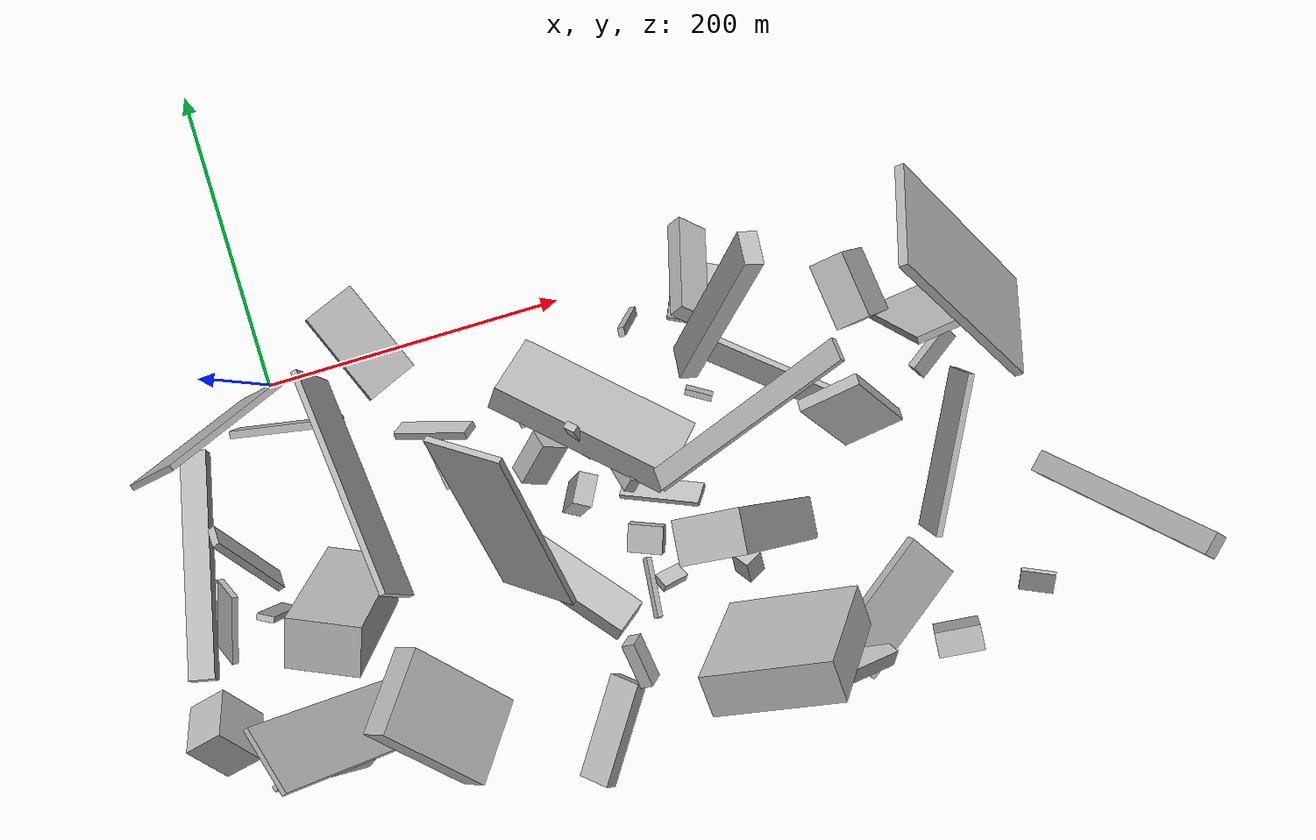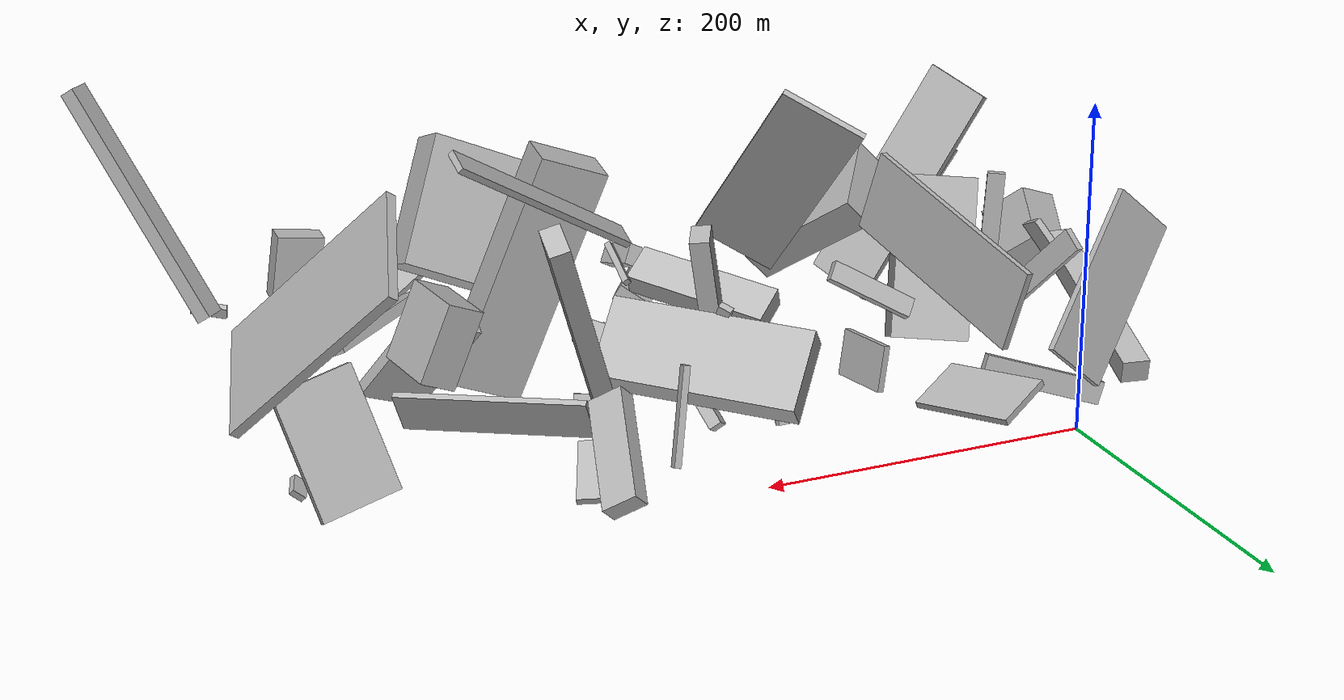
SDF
<sdf version="1.6">
 <world name="default">
  <model name="building_2">
   <static>0</static>
   <pose>451.5624902986939 -33.32970941571944 102.76273283419845 -0.8259827345149581 -0.7592758096414747 2.2470498553428886</pose>
   <link name="link">
    <gravity>0</gravity>
    <pose>0 0 35.5 0 0 0</pose>
    <collision name="collision"><geometry><box><size>145 6 71</size></box></geometry></collision>
    <visual name="visual">
     <cast_shadows>0</cast_shadows>
     <geometry><box><size>145 6 71</size></box></geometry>
     <material>
      <script>
       <uri>model://HANNAS_wall/materials/scripts</uri>
       <uri>model://HANNAS_wall/materials/textures</uri>
       <name>vrc/HANNAS_wall</name>
      </script>
     </material>
    </visual>
   </link>
  </model>
  <model name="building_3">
   <static>0</static>
   <pose>294.24459259865444 -49.984730838097406 99.87693806458475 -2.504968858752314 -1.0709866795299485 0.7755227535362518</pose>
   <link name="link">
    <gravity>0</gravity>
    <pose>0 0 11.0 0 0 0</pose>
    <collision name="collision"><geometry><box><size>150 12 22</size></box></geometry></collision>
    <visual name="visual">
     <cast_shadows>0</cast_shadows>
     <geometry><box><size>150 12 22</size></box></geometry>
     <material>
      <script>
       <uri>model://HANNAS_wall/materials/scripts</uri>
       <uri>model://HANNAS_wall/materials/textures</uri>
       <name>vrc/HANNAS_wall</name>
      </script>
     </material>
    </visual>
   </link>
  </model>
  <model name="building_4">
   <static>0</static>
   <pose>151.2767325008403 -107.09154220934064 32.48193512324727 0.9275128388393038 0.6493418718061549 1.8882977679449942</pose>
   <link name="link">
    <gravity>0</gravity>
    <pose>0 0 16.0 0 0 0</pose>
    <collision name="collision"><geometry><box><size>15 20 32</size></box></geometry></collision>
    <visual name="visual">
     <cast_shadows>0</cast_shadows>
     <geometry><box><size>15 20 32</size></box></geometry>
     <material>
      <script>
       <uri>model://HANNAS_wall/materials/scripts</uri>
       <uri>model://HANNAS_wall/materials/textures</uri>
       <name>vrc/HANNAS_wall</name>
      </script>
     </material>
    </visual>
   </link>
  </model>
  <model name="building_5">
   <static>0</static>
   <pose>296.1737670128903 -179.05190907568524 86.21473645385353 -2.9481805508152674 -1.1986294896747989 2.860380191356934</pose>
   <link name="link">
    <gravity>0</gravity>
    <pose>0 0 21.5 0 0 0</pose>
    <collision name="collision"><geometry><box><size>150 28 43</size></box></geometry></collision>
    <visual name="visual">
     <cast_shadows>0</cast_shadows>
     <geometry><box><size>150 28 43</size></box></geometry>
     <material>
      <script>
       <uri>model://HANNAS_wall/materials/scripts</uri>
       <uri>model://HANNAS_wall/materials/textures</uri>
       <name>vrc/HANNAS_wall</name>
      </script>
     </material>
    </visual>
   </link>
  </model>
  <model name="building_6">
   <static>0</static>
   <pose>71.12265748223888 -214.65724861649122 54.089847000162536 0.9755112662001612 -0.8217843174659927 -0.15030441125377775</pose>
   <link name="link">
    <gravity>0</gravity>
    <pose>0 0 29.0 0 0 0</pose>
    <collision name="collision"><geometry><box><size>22 85 58</size></box></geometry></collision>
    <visual name="visual">
     <cast_shadows>0</cast_shadows>
     <geometry><box><size>22 85 58</size></box></geometry>
     <material>
      <script>
       <uri>model://HANNAS_wall/materials/scripts</uri>
       <uri>model://HANNAS_wall/materials/textures</uri>
       <name>vrc/HANNAS_wall</name>
      </script>
     </material>
    </visual>
   </link>
  </model>
  <model name="building_7">
   <static>0</static>
   <pose>464.2543742640903 -189.53138008457 76.31035935655872 0.054750105578146066 0.5840906714023034 -0.7440478275020213</pose>
   <link name="link">
    <gravity>0</gravity>
    <pose>0 0 75.0 0 0 0</pose>
    <collision name="collision"><geometry><box><size>9 14 150</size></box></geometry></collision>
    <visual name="visual">
     <cast_shadows>0</cast_shadows>
     <geometry><box><size>9 14 150</size></box></geometry>
     <material>
      <script>
       <uri>model://HANNAS_wall/materials/scripts</uri>
       <uri>model://HANNAS_wall/materials/textures</uri>
       <name>vrc/HANNAS_wall</name>
      </script>
     </material>
    </visual>
   </link>
  </model>
  <model name="building_9">
   <static>0</static>
   <pose>402.8307953808595 -80.43801238531685 42.143537407230895 -2.058238575848827 -1.1165951587942737 -1.0037950295369915</pose>
   <link name="link">
    <gravity>0</gravity>
    <pose>0 0 24.5 0 0 0</pose>
    <collision name="collision"><geometry><box><size>76 5 49</size></box></geometry></collision>
    <visual name="visual">
     <cast_shadows>0</cast_shadows>
     <geometry><box><size>76 5 49</size></box></geometry>
     <material>
      <script>
       <uri>model://HANNAS_wall/materials/scripts</uri>
       <uri>model://HANNAS_wall/materials/textures</uri>
       <name>vrc/HANNAS_wall</name>
      </script>
     </material>
    </visual>
   </link>
  </model>
  <model name="building_12">
   <static>0</static>
   <pose>406.99695888584796 -162.16269770112368 60.97939326974913 -0.11763524278981584 -0.15774184154037282 2.6952777827222993</pose>
   <link name="link">
    <gravity>0</gravity>
    <pose>0 0 19.0 0 0 0</pose>
    <collision name="collision"><geometry><box><size>4 103 38</size></box></geometry></collision>
    <visual name="visual">
     <cast_shadows>0</cast_shadows>
     <geometry><box><size>4 103 38</size></box></geometry>
     <material>
      <script>
       <uri>model://HANNAS_wall/materials/scripts</uri>
       <uri>model://HANNAS_wall/materials/textures</uri>
       <name>vrc/HANNAS_wall</name>
      </script>
     </material>
    </visual>
   </link>
  </model>
  <model name="building_13">
   <static>0</static>
   <pose>4.032316573456139 -31.386098392290506 27.423597168816624 2.808362640784029 -0.1357000118732573 1.4422339011119525</pose>
   <link name="link">
    <gravity>0</gravity>
    <pose>0 0 7.0 0 0 0</pose>
    <collision name="collision"><geometry><box><size>5 78 14</size></box></geometry></collision>
    <visual name="visual">
     <cast_shadows>0</cast_shadows>
     <geometry><box><size>5 78 14</size></box></geometry>
     <material>
      <script>
       <uri>model://HANNAS_wall/materials/scripts</uri>
       <uri>model://HANNAS_wall/materials/textures</uri>
       <name>vrc/HANNAS_wall</name>
      </script>
     </material>
    </visual>
   </link>
  </model>
  <model name="building_15">
   <static>0</static>
   <pose>83.05421869000531 -55.668051343389344 68.76536428135091 -0.9567382481227157 0.5513022646672949 -1.4916707012942982</pose>
   <link name="link">
    <gravity>0</gravity>
    <pose>0 0 27.0 0 0 0</pose>
    <collision name="collision"><geometry><box><size>5 12 54</size></box></geometry></collision>
    <visual name="visual">
     <cast_shadows>0</cast_shadows>
     <geometry><box><size>5 12 54</size></box></geometry>
     <material>
      <script>
       <uri>model://HANNAS_wall/materials/scripts</uri>
       <uri>model://HANNAS_wall/materials/textures</uri>
       <name>vrc/HANNAS_wall</name>
      </script>
     </material>
    </visual>
   </link>
  </model>
  <model name="building_17">
   <static>0</static>
   <pose>303.46732956016973 -29.11324415672587 16.94607264653463 -1.4899946266989361 0.39201506307398987 1.1509717508772095</pose>
   <link name="link">
    <gravity>0</gravity>
    <pose>0 0 16.0 0 0 0</pose>
    <collision name="collision"><geometry><box><size>44 4 32</size></box></geometry></collision>
    <visual name="visual">
     <cast_shadows>0</cast_shadows>
     <geometry><box><size>44 4 32</size></box></geometry>
     <material>
      <script>
       <uri>model://HANNAS_wall/materials/scripts</uri>
       <uri>model://HANNAS_wall/materials/textures</uri>
       <name>vrc/HANNAS_wall</name>
      </script>
     </material>
    </visual>
   </link>
  </model>
  <model name="building_20">
   <static>0</static>
   <pose>-51.62002118880841 -147.30420112321517 71.76723108918968 -2.6759814854458868 0.5400792590107414 -0.12164570405082717</pose>
   <link name="link">
    <gravity>0</gravity>
    <pose>0 0 13.0 0 0 0</pose>
    <collision name="collision"><geometry><box><size>4 48 26</size></box></geometry></collision>
    <visual name="visual">
     <cast_shadows>0</cast_shadows>
     <geometry><box><size>4 48 26</size></box></geometry>
     <material>
      <script>
       <uri>model://HANNAS_wall/materials/scripts</uri>
       <uri>model://HANNAS_wall/materials/textures</uri>
       <name>vrc/HANNAS_wall</name>
      </script>
     </material>
    </visual>
   </link>
  </model>
  <model name="building_22">
   <static>0</static>
   <pose>-33.438903712791856 -221.27981078544016 69.20277285872248 2.493848589270199 -0.34049098860665267 1.1289027266845415</pose>
   <link name="link">
    <gravity>0</gravity>
    <pose>0 0 11.5 0 0 0</pose>
    <collision name="collision"><geometry><box><size>7 27 23</size></box></geometry></collision>
    <visual name="visual">
     <cast_shadows>0</cast_shadows>
     <geometry><box><size>7 27 23</size></box></geometry>
     <material>
      <script>
       <uri>model://HANNAS_wall/materials/scripts</uri>
       <uri>model://HANNAS_wall/materials/textures</uri>
       <name>vrc/HANNAS_wall</name>
      </script>
     </material>
    </visual>
   </link>
  </model>
  <model name="building_23">
   <static>0</static>
   <pose>215.22700282867342 -67.97996047458827 29.768134644519385 -0.06448674257944507 -0.8016641945003186 0.8675040339189963</pose>
   <link name="link">
    <gravity>0</gravity>
    <pose>0 0 25.5 0 0 0</pose>
    <collision name="collision"><geometry><box><size>19 123 51</size></box></geometry></collision>
    <visual name="visual">
     <cast_shadows>0</cast_shadows>
     <geometry><box><size>19 123 51</size></box></geometry>
     <material>
      <script>
       <uri>model://HANNAS_wall/materials/scripts</uri>
       <uri>model://HANNAS_wall/materials/textures</uri>
       <name>vrc/HANNAS_wall</name>
      </script>
     </material>
    </visual>
   </link>
  </model>
  <model name="building_24">
   <static>0</static>
   <pose>-23.988614353842344 -247.6736132114047 50.9372792480067 1.1623830595055502 -0.36851839528940045 0.6105968302007813</pose>
   <link name="link">
    <gravity>0</gravity>
    <pose>0 0 2.0 0 0 0</pose>
    <collision name="collision"><geometry><box><size>18 91 4</size></box></geometry></collision>
    <visual name="visual">
     <cast_shadows>0</cast_shadows>
     <geometry><box><size>18 91 4</size></box></geometry>
     <material>
      <script>
       <uri>model://HANNAS_wall/materials/scripts</uri>
       <uri>model://HANNAS_wall/materials/textures</uri>
       <name>vrc/HANNAS_wall</name>
      </script>
     </material>
    </visual>
   </link>
  </model>
  <model name="building_30">
   <static>0</static>
   <pose>-31.36417800949688 -239.15920118520944 8.774959442405294 2.479385753158873 0.7455972902719538 -2.5316493583746156</pose>
   <link name="link">
    <gravity>0</gravity>
    <pose>0 0 2.0 0 0 0</pose>
    <collision name="collision"><geometry><box><size>6 22 4</size></box></geometry></collision>
    <visual name="visual">
     <cast_shadows>0</cast_shadows>
     <geometry><box><size>6 22 4</size></box></geometry>
     <material>
      <script>
       <uri>model://HANNAS_wall/materials/scripts</uri>
       <uri>model://HANNAS_wall/materials/textures</uri>
       <name>vrc/HANNAS_wall</name>
      </script>
     </material>
    </visual>
   </link>
  </model>
  <model name="building_31">
   <static>0</static>
   <pose>388.17584803030763 -282.0164363616808 42.30422748387398 0.0023739043710750913 -0.13676317492188012 -0.08147370555343918</pose>
   <link name="link">
    <gravity>0</gravity>
    <pose>0 0 20.5 0 0 0</pose>
    <collision name="collision"><geometry><box><size>29 16 41</size></box></geometry></collision>
    <visual name="visual">
     <cast_shadows>0</cast_shadows>
     <geometry><box><size>29 16 41</size></box></geometry>
     <material>
      <script>
       <uri>model://HANNAS_wall/materials/scripts</uri>
       <uri>model://HANNAS_wall/materials/textures</uri>
       <name>vrc/HANNAS_wall</name>
      </script>
     </material>
    </visual>
   </link>
  </model>
  <model name="building_33">
   <static>0</static>
   <pose>156.5583010689324 -182.6293961566376 40.918287389989466 0.15990444128582296 -0.5184925155050153 -2.519461892789466</pose>
   <link name="link">
    <gravity>0</gravity>
    <pose>0 0 7.5 0 0 0</pose>
    <collision name="collision"><geometry><box><size>25 91 15</size></box></geometry></collision>
    <visual name="visual">
     <cast_shadows>0</cast_shadows>
     <geometry><box><size>25 91 15</size></box></geometry>
     <material>
      <script>
       <uri>model://HANNAS_wall/materials/scripts</uri>
       <uri>model://HANNAS_wall/materials/textures</uri>
       <name>vrc/HANNAS_wall</name>
      </script>
     </material>
    </visual>
   </link>
  </model>
  <model name="building_34">
   <static>0</static>
   <pose>444.1072434119529 -83.28287669640736 8.211256930859381 0.43426534998078237 -0.7922267940661423 2.4507759026894695</pose>
   <link name="link">
    <gravity>0</gravity>
    <pose>0 0 4.5 0 0 0</pose>
    <collision name="collision"><geometry><box><size>4 13 9</size></box></geometry></collision>
    <visual name="visual">
     <cast_shadows>0</cast_shadows>
     <geometry><box><size>4 13 9</size></box></geometry>
     <material>
      <script>
       <uri>model://HANNAS_wall/materials/scripts</uri>
       <uri>model://HANNAS_wall/materials/textures</uri>
       <name>vrc/HANNAS_wall</name>
      </script>
     </material>
    </visual>
   </link>
  </model>
  <model name="building_37">
   <static>0</static>
   <pose>231.70824100440421 -130.868606887137 110.27158323949004 -0.9553997217885196 -0.44876100926736806 -1.5043587718758642</pose>
   <link name="link">
    <gravity>0</gravity>
    <pose>0 0 74.0 0 0 0</pose>
    <collision name="collision"><geometry><box><size>15 4 148</size></box></geometry></collision>
    <visual name="visual">
     <cast_shadows>0</cast_shadows>
     <geometry><box><size>15 4 148</size></box></geometry>
     <material>
      <script>
       <uri>model://HANNAS_wall/materials/scripts</uri>
       <uri>model://HANNAS_wall/materials/textures</uri>
       <name>vrc/HANNAS_wall</name>
      </script>
     </material>
    </visual>
   </link>
  </model>
  <model name="building_38">
   <static>0</static>
   <pose>211.22124045199027 -169.43228697006796 10.54079574492289 -2.9163793306872097 0.15634803066473366 -1.8960968574811505</pose>
   <link name="link">
    <gravity>0</gravity>
    <pose>0 0 4.5 0 0 0</pose>
    <collision name="collision"><geometry><box><size>19 24 9</size></box></geometry></collision>
    <visual name="visual">
     <cast_shadows>0</cast_shadows>
     <geometry><box><size>19 24 9</size></box></geometry>
     <material>
      <script>
       <uri>model://HANNAS_wall/materials/scripts</uri>
       <uri>model://HANNAS_wall/materials/textures</uri>
       <name>vrc/HANNAS_wall</name>
      </script>
     </material>
    </visual>
   </link>
  </model>
  <model name="building_39">
   <static>0</static>
   <pose>53.52100733027267 -84.36913834237176 68.20634369231799 0.1604917648877754 -0.1971734970545488 -1.4462767649290929</pose>
   <link name="link">
    <gravity>0</gravity>
    <pose>0 0 25.0 0 0 0</pose>
    <collision name="collision"><geometry><box><size>150 4 50</size></box></geometry></collision>
    <visual name="visual">
     <cast_shadows>0</cast_shadows>
     <geometry><box><size>150 4 50</size></box></geometry>
     <material>
      <script>
       <uri>model://HANNAS_wall/materials/scripts</uri>
       <uri>model://HANNAS_wall/materials/textures</uri>
       <name>vrc/HANNAS_wall</name>
      </script>
     </material>
    </visual>
   </link>
  </model>
  <model name="building_40">
   <static>0</static>
   <pose>352.4079281810323 -256.39441332288607 22.175360631776467 -0.4700656475528027 -0.053017605093378724 -2.500384729446948</pose>
   <link name="link">
    <gravity>0</gravity>
    <pose>0 0 3.5 0 0 0</pose>
    <collision name="collision"><geometry><box><size>88 41 7</size></box></geometry></collision>
    <visual name="visual">
     <cast_shadows>0</cast_shadows>
     <geometry><box><size>88 41 7</size></box></geometry>
     <material>
      <script>
       <uri>model://HANNAS_wall/materials/scripts</uri>
       <uri>model://HANNAS_wall/materials/textures</uri>
       <name>vrc/HANNAS_wall</name>
      </script>
     </material>
    </visual>
   </link>
  </model>
  <model name="building_41">
   <static>0</static>
   <pose>271.79682091670065 -207.1673770442826 26.632484901811797 -0.5803751985641832 0.32184685981914457 0.4581546008265512</pose>
   <link name="link">
    <gravity>0</gravity>
    <pose>0 0 10.5 0 0 0</pose>
    <collision name="collision"><geometry><box><size>13 14 21</size></box></geometry></collision>
    <visual name="visual">
     <cast_shadows>0</cast_shadows>
     <geometry><box><size>13 14 21</size></box></geometry>
     <material>
      <script>
       <uri>model://HANNAS_wall/materials/scripts</uri>
       <uri>model://HANNAS_wall/materials/textures</uri>
       <name>vrc/HANNAS_wall</name>
      </script>
     </material>
    </visual>
   </link>
  </model>
  <model name="building_43">
   <static>0</static>
   <pose>139.52620380761385 -177.46917326616574 73.8988709648814 0.5563743474202348 -0.47791918308489767 -2.4012192454692083</pose>
   <link name="link">
    <gravity>0</gravity>
    <pose>0 0 75.0 0 0 0</pose>
    <collision name="collision"><geometry><box><size>4 53 150</size></box></geometry></collision>
    <visual name="visual">
     <cast_shadows>0</cast_shadows>
     <geometry><box><size>4 53 150</size></box></geometry>
     <material>
      <script>
       <uri>model://HANNAS_wall/materials/scripts</uri>
       <uri>model://HANNAS_wall/materials/textures</uri>
       <name>vrc/HANNAS_wall</name>
      </script>
     </material>
    </visual>
   </link>
  </model>
  <model name="building_49">
   <static>0</static>
   <pose>271.40045511477166 -88.16103460836834 29.90727332395401 1.2062929205773025 0.0011164917379262557 2.603946091683736</pose>
   <link name="link">
    <gravity>0</gravity>
    <pose>0 0 2.0 0 0 0</pose>
    <collision name="collision"><geometry><box><size>18 9 4</size></box></geometry></collision>
    <visual name="visual">
     <cast_shadows>0</cast_shadows>
     <geometry><box><size>18 9 4</size></box></geometry>
     <material>
      <script>
       <uri>model://HANNAS_wall/materials/scripts</uri>
       <uri>model://HANNAS_wall/materials/textures</uri>
       <name>vrc/HANNAS_wall</name>
      </script>
     </material>
    </visual>
   </link>
  </model>
  <model name="building_51">
   <static>0</static>
   <pose>20.596185199099708 -139.7845809331872 61.51076527808255 -2.958609365830133 -1.1809345818381236 -2.144928433061227</pose>
   <link name="link">
    <gravity>0</gravity>
    <pose>0 0 17.5 0 0 0</pose>
    <collision name="collision"><geometry><box><size>101 48 35</size></box></geometry></collision>
    <visual name="visual">
     <cast_shadows>0</cast_shadows>
     <geometry><box><size>101 48 35</size></box></geometry>
     <material>
      <script>
       <uri>model://HANNAS_wall/materials/scripts</uri>
       <uri>model://HANNAS_wall/materials/textures</uri>
       <name>vrc/HANNAS_wall</name>
      </script>
     </material>
    </visual>
   </link>
  </model>
  <model name="building_52">
   <static>0</static>
   <pose>-18.99928889842897 -143.60622361312394 50.80145640086499 0.0211187506406131 -0.057114989751775744 -0.49751936429781063</pose>
   <link name="link">
    <gravity>0</gravity>
    <pose>0 0 29.5 0 0 0</pose>
    <collision name="collision"><geometry><box><size>11 4 59</size></box></geometry></collision>
    <visual name="visual">
     <cast_shadows>0</cast_shadows>
     <geometry><box><size>11 4 59</size></box></geometry>
     <material>
      <script>
       <uri>model://HANNAS_wall/materials/scripts</uri>
       <uri>model://HANNAS_wall/materials/textures</uri>
       <name>vrc/HANNAS_wall</name>
      </script>
     </material>
    </visual>
   </link>
  </model>
  <model name="building_54">
   <static>0</static>
   <pose>-32.61557959311533 -105.49193620937025 57.450985099725955 1.752191349309527 -0.7153957137342511 -1.3581077333536864</pose>
   <link name="link">
    <gravity>0</gravity>
    <pose>0 0 2.5 0 0 0</pose>
    <collision name="collision"><geometry><box><size>15 67 5</size></box></geometry></collision>
    <visual name="visual">
     <cast_shadows>0</cast_shadows>
     <geometry><box><size>15 67 5</size></box></geometry>
     <material>
      <script>
       <uri>model://HANNAS_wall/materials/scripts</uri>
       <uri>model://HANNAS_wall/materials/textures</uri>
       <name>vrc/HANNAS_wall</name>
      </script>
     </material>
    </visual>
   </link>
  </model>
  <model name="building_58">
   <static>0</static>
   <pose>238.97013515039882 -28.918078815326687 39.19176165508438 -0.9558057048662019 -1.257790742474574 -2.2764212014989513</pose>
   <link name="link">
    <gravity>0</gravity>
    <pose>0 0 2.0 0 0 0</pose>
    <collision name="collision"><geometry><box><size>58 6 4</size></box></geometry></collision>
    <visual name="visual">
     <cast_shadows>0</cast_shadows>
     <geometry><box><size>58 6 4</size></box></geometry>
     <material>
      <script>
       <uri>model://HANNAS_wall/materials/scripts</uri>
       <uri>model://HANNAS_wall/materials/textures</uri>
       <name>vrc/HANNAS_wall</name>
      </script>
     </material>
    </visual>
   </link>
  </model>
  <model name="building_61">
   <static>0</static>
   <pose>237.34879323292037 -251.63726569307426 68.15770006340229 1.1308885868970955 -0.38856822253865003 1.6409999260962251</pose>
   <link name="link">
    <gravity>0</gravity>
    <pose>0 0 43.5 0 0 0</pose>
    <collision name="collision"><geometry><box><size>30 82 87</size></box></geometry></collision>
    <visual name="visual">
     <cast_shadows>0</cast_shadows>
     <geometry><box><size>30 82 87</size></box></geometry>
     <material>
      <script>
       <uri>model://HANNAS_wall/materials/scripts</uri>
       <uri>model://HANNAS_wall/materials/textures</uri>
       <name>vrc/HANNAS_wall</name>
      </script>
     </material>
    </visual>
   </link>
  </model>
  <model name="building_62">
   <static>0</static>
   <pose>366.6909670272046 -52.76340911807071 98.61597034632122 -1.161271704039408 -0.015815327205832598 -1.4488958853950187</pose>
   <link name="link">
    <gravity>0</gravity>
    <pose>0 0 11.0 0 0 0</pose>
    <collision name="collision"><geometry><box><size>42 46 22</size></box></geometry></collision>
    <visual name="visual">
     <cast_shadows>0</cast_shadows>
     <geometry><box><size>42 46 22</size></box></geometry>
     <material>
      <script>
       <uri>model://HANNAS_wall/materials/scripts</uri>
       <uri>model://HANNAS_wall/materials/textures</uri>
       <name>vrc/HANNAS_wall</name>
      </script>
     </material>
    </visual>
   </link>
  </model>
  <model name="building_63">
   <static>0</static>
   <pose>206.97262448903263 -196.81174549598262 65.17810925115784 0.3550000420236389 -0.6277798004845948 2.8338128762108212</pose>
   <link name="link">
    <gravity>0</gravity>
    <pose>0 0 2.0 0 0 0</pose>
    <collision name="collision"><geometry><box><size>4 39 4</size></box></geometry></collision>
    <visual name="visual">
     <cast_shadows>0</cast_shadows>
     <geometry><box><size>4 39 4</size></box></geometry>
     <material>
      <script>
       <uri>model://HANNAS_wall/materials/scripts</uri>
       <uri>model://HANNAS_wall/materials/textures</uri>
       <name>vrc/HANNAS_wall</name>
      </script>
     </material>
    </visual>
   </link>
  </model>
  <model name="building_65">
   <static>0</static>
   <pose>82.82462699988704 -23.415167155689495 33.172230103996895 -1.4183125812451378 0.36826387722169585 0.4335496712430147</pose>
   <link name="link">
    <gravity>0</gravity>
    <pose>0 0 33.0 0 0 0</pose>
    <collision name="collision"><geometry><box><size>37 4 66</size></box></geometry></collision>
    <visual name="visual">
     <cast_shadows>0</cast_shadows>
     <geometry><box><size>37 4 66</size></box></geometry>
     <material>
      <script>
       <uri>model://HANNAS_wall/materials/scripts</uri>
       <uri>model://HANNAS_wall/materials/textures</uri>
       <name>vrc/HANNAS_wall</name>
      </script>
     </material>
    </visual>
   </link>
  </model>
  <model name="building_66">
   <static>0</static>
   <pose>102.71853771917385 -98.78902849190894 28.674495690973558 1.5018786802452857 0.19321091670107152 -3.014211866778772</pose>
   <link name="link">
    <gravity>0</gravity>
    <pose>0 0 20.0 0 0 0</pose>
    <collision name="collision"><geometry><box><size>4 28 40</size></box></geometry></collision>
    <visual name="visual">
     <cast_shadows>0</cast_shadows>
     <geometry><box><size>4 28 40</size></box></geometry>
     <material>
      <script>
       <uri>model://HANNAS_wall/materials/scripts</uri>
       <uri>model://HANNAS_wall/materials/textures</uri>
       <name>vrc/HANNAS_wall</name>
      </script>
     </material>
    </visual>
   </link>
  </model>
  <model name="building_69">
   <static>0</static>
   <pose>192.2421681139625 -104.00955769435211 36.03912140032342 -0.251761611309171 -0.4033717813592329 -0.7676321221855453</pose>
   <link name="link">
    <gravity>0</gravity>
    <pose>0 0 22.5 0 0 0</pose>
    <collision name="collision"><geometry><box><size>8 5 45</size></box></geometry></collision>
    <visual name="visual">
     <cast_shadows>0</cast_shadows>
     <geometry><box><size>8 5 45</size></box></geometry>
     <material>
      <script>
       <uri>model://HANNAS_wall/materials/scripts</uri>
       <uri>model://HANNAS_wall/materials/textures</uri>
       <name>vrc/HANNAS_wall</name>
      </script>
     </material>
    </visual>
   </link>
  </model>
  <model name="building_70">
   <static>0</static>
   <pose>231.44367373727738 -141.68312131457205 38.93737303172151 0.6475548493387281 0.3440569011824349 2.765567348146191</pose>
   <link name="link">
    <gravity>0</gravity>
    <pose>0 0 2.0 0 0 0</pose>
    <collision name="collision"><geometry><box><size>54 16 4</size></box></geometry></collision>
    <visual name="visual">
     <cast_shadows>0</cast_shadows>
     <geometry><box><size>54 16 4</size></box></geometry>
     <material>
      <script>
       <uri>model://HANNAS_wall/materials/scripts</uri>
       <uri>model://HANNAS_wall/materials/textures</uri>
       <name>vrc/HANNAS_wall</name>
      </script>
     </material>
    </visual>
   </link>
  </model>
  <model name="building_75">
   <static>0</static>
   <pose>-1.7673661482716199 -227.58580943697183 78.25866569768206 0.4772249060061645 -1.0162520906707577 3.0437636651632474</pose>
   <link name="link">
    <gravity>0</gravity>
    <pose>0 0 2.0 0 0 0</pose>
    <collision name="collision"><geometry><box><size>150 46 4</size></box></geometry></collision>
    <visual name="visual">
     <cast_shadows>0</cast_shadows>
     <geometry><box><size>150 46 4</size></box></geometry>
     <material>
      <script>
       <uri>model://HANNAS_wall/materials/scripts</uri>
       <uri>model://HANNAS_wall/materials/textures</uri>
       <name>vrc/HANNAS_wall</name>
      </script>
     </material>
    </visual>
   </link>
  </model>
  <model name="building_76">
   <static>0</static>
   <pose>189.06002996847894 -255.59799531022213 48.349187107563466 -0.9935880676857135 0.9819943234889512 0.621025509494474</pose>
   <link name="link">
    <gravity>0</gravity>
    <pose>0 0 16.0 0 0 0</pose>
    <collision name="collision"><geometry><box><size>13 9 32</size></box></geometry></collision>
    <visual name="visual">
     <cast_shadows>0</cast_shadows>
     <geometry><box><size>13 9 32</size></box></geometry>
     <material>
      <script>
       <uri>model://HANNAS_wall/materials/scripts</uri>
       <uri>model://HANNAS_wall/materials/textures</uri>
       <name>vrc/HANNAS_wall</name>
      </script>
     </material>
    </visual>
   </link>
  </model>
  <model name="building_78">
   <static>0</static>
   <pose>341.994458156311 -127.94241194552139 49.50814175912183 1.1271991036881075 0.5016728948662855 1.5076052010952161</pose>
   <link name="link">
    <gravity>0</gravity>
    <pose>0 0 21.0 0 0 0</pose>
    <collision name="collision"><geometry><box><size>8 67 42</size></box></geometry></collision>
    <visual name="visual">
     <cast_shadows>0</cast_shadows>
     <geometry><box><size>8 67 42</size></box></geometry>
     <material>
      <script>
       <uri>model://HANNAS_wall/materials/scripts</uri>
       <uri>model://HANNAS_wall/materials/textures</uri>
       <name>vrc/HANNAS_wall</name>
      </script>
     </material>
    </visual>
   </link>
  </model>
  <model name="building_81">
   <static>0</static>
   <pose>-30.625178664796813 -25.581356299225394 75.20782083950819 1.264584412812941 -0.8062261999126138 -2.628145259986439</pose>
   <link name="link">
    <gravity>0</gravity>
    <pose>0 0 2.0 0 0 0</pose>
    <collision name="collision"><geometry><box><size>107 46 4</size></box></geometry></collision>
    <visual name="visual">
     <cast_shadows>0</cast_shadows>
     <geometry><box><size>107 46 4</size></box></geometry>
     <material>
      <script>
       <uri>model://HANNAS_wall/materials/scripts</uri>
       <uri>model://HANNAS_wall/materials/textures</uri>
       <name>vrc/HANNAS_wall</name>
      </script>
     </material>
    </visual>
   </link>
  </model>
  <model name="building_82">
   <static>0</static>
   <pose>174.725754224014 -254.4072317921211 14.957122017638545 1.6255308697621487 1.0283394916504893 -0.5349786949685507</pose>
   <link name="link">
    <gravity>0</gravity>
    <pose>0 0 35.5 0 0 0</pose>
    <collision name="collision"><geometry><box><size>11 22 71</size></box></geometry></collision>
    <visual name="visual">
     <cast_shadows>0</cast_shadows>
     <geometry><box><size>11 22 71</size></box></geometry>
     <material>
      <script>
       <uri>model://HANNAS_wall/materials/scripts</uri>
       <uri>model://HANNAS_wall/materials/textures</uri>
       <name>vrc/HANNAS_wall</name>
      </script>
     </material>
    </visual>
   </link>
  </model>
  <model name="building_84">
   <static>0</static>
   <pose>422.2808387372267 -99.49463448245533 40.6116519090982 -3.115267655966847 -0.8418671743150543 -0.9635419324984238</pose>
   <link name="link">
    <gravity>0</gravity>
    <pose>0 0 6.5 0 0 0</pose>
    <collision name="collision"><geometry><box><size>6 34 13</size></box></geometry></collision>
    <visual name="visual">
     <cast_shadows>0</cast_shadows>
     <geometry><box><size>6 34 13</size></box></geometry>
     <material>
      <script>
       <uri>model://HANNAS_wall/materials/scripts</uri>
       <uri>model://HANNAS_wall/materials/textures</uri>
       <name>vrc/HANNAS_wall</name>
      </script>
     </material>
    </visual>
   </link>
  </model>
  <model name="building_85">
   <static>0</static>
   <pose>329.0859739327484 -92.32635839745436 28.777644190415533 0.1683899883059004 -1.1006903584219994 0.7290993043597672</pose>
   <link name="link">
    <gravity>0</gravity>
    <pose>0 0 2.0 0 0 0</pose>
    <collision name="collision"><geometry><box><size>28 116 4</size></box></geometry></collision>
    <visual name="visual">
     <cast_shadows>0</cast_shadows>
     <geometry><box><size>28 116 4</size></box></geometry>
     <material>
      <script>
       <uri>model://HANNAS_wall/materials/scripts</uri>
       <uri>model://HANNAS_wall/materials/textures</uri>
       <name>vrc/HANNAS_wall</name>
      </script>
     </material>
    </visual>
   </link>
  </model>
  <model name="building_91">
   <static>0</static>
   <pose>161.38988427390353 -73.72247070353369 48.53325780483509 2.758587881752873 0.05468483832564588 -3.0199234514219144</pose>
   <link name="link">
    <gravity>0</gravity>
    <pose>0 0 21.5 0 0 0</pose>
    <collision name="collision"><geometry><box><size>11 4 43</size></box></geometry></collision>
    <visual name="visual">
     <cast_shadows>0</cast_shadows>
     <geometry><box><size>11 4 43</size></box></geometry>
     <material>
      <script>
       <uri>model://HANNAS_wall/materials/scripts</uri>
       <uri>model://HANNAS_wall/materials/textures</uri>
       <name>vrc/HANNAS_wall</name>
      </script>
     </material>
    </visual>
   </link>
  </model>
  <model name="building_93">
   <static>0</static>
   <pose>-71.49355847695021 -100.08738230089097 37.12211287204712 2.9384522079321074 0.01782125646541942 -0.20123767218373553</pose>
   <link name="link">
    <gravity>0</gravity>
    <pose>0 0 7.0 0 0 0</pose>
    <collision name="collision"><geometry><box><size>17 150 14</size></box></geometry></collision>
    <visual name="visual">
     <cast_shadows>0</cast_shadows>
     <geometry><box><size>17 150 14</size></box></geometry>
     <material>
      <script>
       <uri>model://HANNAS_wall/materials/scripts</uri>
       <uri>model://HANNAS_wall/materials/textures</uri>
       <name>vrc/HANNAS_wall</name>
      </script>
     </material>
    </visual>
   </link>
  </model>
  <model name="building_94">
   <static>0</static>
   <pose>283.73525203677684 -10.169564910157018 30.889718673247636 0.6731474356814889 -0.5486241060289208 2.4786299244538728</pose>
   <link name="link">
    <gravity>0</gravity>
    <pose>0 0 6.0 0 0 0</pose>
    <collision name="collision"><geometry><box><size>22 72 12</size></box></geometry></collision>
    <visual name="visual">
     <cast_shadows>0</cast_shadows>
     <geometry><box><size>22 72 12</size></box></geometry>
     <material>
      <script>
       <uri>model://HANNAS_wall/materials/scripts</uri>
       <uri>model://HANNAS_wall/materials/textures</uri>
       <name>vrc/HANNAS_wall</name>
      </script>
     </material>
    </visual>
   </link>
  </model>
  <model name="building_97">
   <static>0</static>
   <pose>-70.69006542204198 -207.27030940344122 46.896558258030495 -2.0587897314612382 -0.6648004941837123 2.1198549467754253</pose>
   <link name="link">
    <gravity>0</gravity>
    <pose>0 0 14.5 0 0 0</pose>
    <collision name="collision"><geometry><box><size>37 35 29</size></box></geometry></collision>
    <visual name="visual">
     <cast_shadows>0</cast_shadows>
     <geometry><box><size>37 35 29</size></box></geometry>
     <material>
      <script>
       <uri>model://HANNAS_wall/materials/scripts</uri>
       <uri>model://HANNAS_wall/materials/textures</uri>
       <name>vrc/HANNAS_wall</name>
      </script>
     </material>
    </visual>
   </link>
  </model>
  <model name="building_100">
   <static>0</static>
   <pose>176.18305533981186 -123.31738800935597 80.34436978044897 1.6869275375073216 0.18216249238966006 1.0775338374267485</pose>
   <link name="link">
    <gravity>0</gravity>
    <pose>0 0 6.0 0 0 0</pose>
    <collision name="collision"><geometry><box><size>20 57 12</size></box></geometry></collision>
    <visual name="visual">
     <cast_shadows>0</cast_shadows>
     <geometry><box><size>20 57 12</size></box></geometry>
     <material>
      <script>
       <uri>model://HANNAS_wall/materials/scripts</uri>
       <uri>model://HANNAS_wall/materials/textures</uri>
       <name>vrc/HANNAS_wall</name>
      </script>
     </material>
    </visual>
   </link>
  </model>
  <model name="building_101">
   <static>0</static>
   <pose>209.02177003733578 -103.18053853936237 30.781513964689292 0.8318424227540473 0.506672211463721 -2.3811076379719562</pose>
   <link name="link">
    <gravity>0</gravity>
    <pose>0 0 4.0 0 0 0</pose>
    <collision name="collision"><geometry><box><size>10 80 8</size></box></geometry></collision>
    <visual name="visual">
     <cast_shadows>0</cast_shadows>
     <geometry><box><size>10 80 8</size></box></geometry>
     <material>
      <script>
       <uri>model://HANNAS_wall/materials/scripts</uri>
       <uri>model://HANNAS_wall/materials/textures</uri>
       <name>vrc/HANNAS_wall</name>
      </script>
     </material>
    </visual>
   </link>
  </model>
  <model name="building_102">
   <static>0</static>
   <pose>218.287985621732 -193.4230754101251 15.762856624234832 1.009334623695902 0.5438873555704841 0.1467503079865557</pose>
   <link name="link">
    <gravity>0</gravity>
    <pose>0 0 5.5 0 0 0</pose>
    <collision name="collision"><geometry><box><size>19 6 11</size></box></geometry></collision>
    <visual name="visual">
     <cast_shadows>0</cast_shadows>
     <geometry><box><size>19 6 11</size></box></geometry>
     <material>
      <script>
       <uri>model://HANNAS_wall/materials/scripts</uri>
       <uri>model://HANNAS_wall/materials/textures</uri>
       <name>vrc/HANNAS_wall</name>
      </script>
     </material>
    </visual>
   </link>
  </model>
  <model name="building_103">
   <static>0</static>
   <pose>444.019157252095 -269.938237149259 44.54112598562912 0.2527120676985192 -0.8266295470423468 -2.166506981419639</pose>
   <link name="link">
    <gravity>0</gravity>
    <pose>0 0 8.5 0 0 0</pose>
    <collision name="collision"><geometry><box><size>3 22 17</size></box></geometry></collision>
    <visual name="visual">
     <cast_shadows>0</cast_shadows>
     <geometry><box><size>3 22 17</size></box></geometry>
     <material>
      <script>
       <uri>model://HANNAS_wall/materials/scripts</uri>
       <uri>model://HANNAS_wall/materials/textures</uri>
       <name>vrc/HANNAS_wall</name>
      </script>
     </material>
    </visual>
   </link>
  </model>
  <model name="building_105">
   <static>0</static>
   <pose>326.2573869036657 -289.7974567073326 41.01802617079099 -2.4168977768180353 0.6439787474479167 0.0035657010550376573</pose>
   <link name="link">
    <gravity>0</gravity>
    <pose>0 0 7.0 0 0 0</pose>
    <collision name="collision"><geometry><box><size>52 12 14</size></box></geometry></collision>
    <visual name="visual">
     <cast_shadows>0</cast_shadows>
     <geometry><box><size>52 12 14</size></box></geometry>
     <material>
      <script>
       <uri>model://HANNAS_wall/materials/scripts</uri>
       <uri>model://HANNAS_wall/materials/textures</uri>
       <name>vrc/HANNAS_wall</name>
      </script>
     </material>
    </visual>
   </link>
  </model>
 </world>
</sdf>
